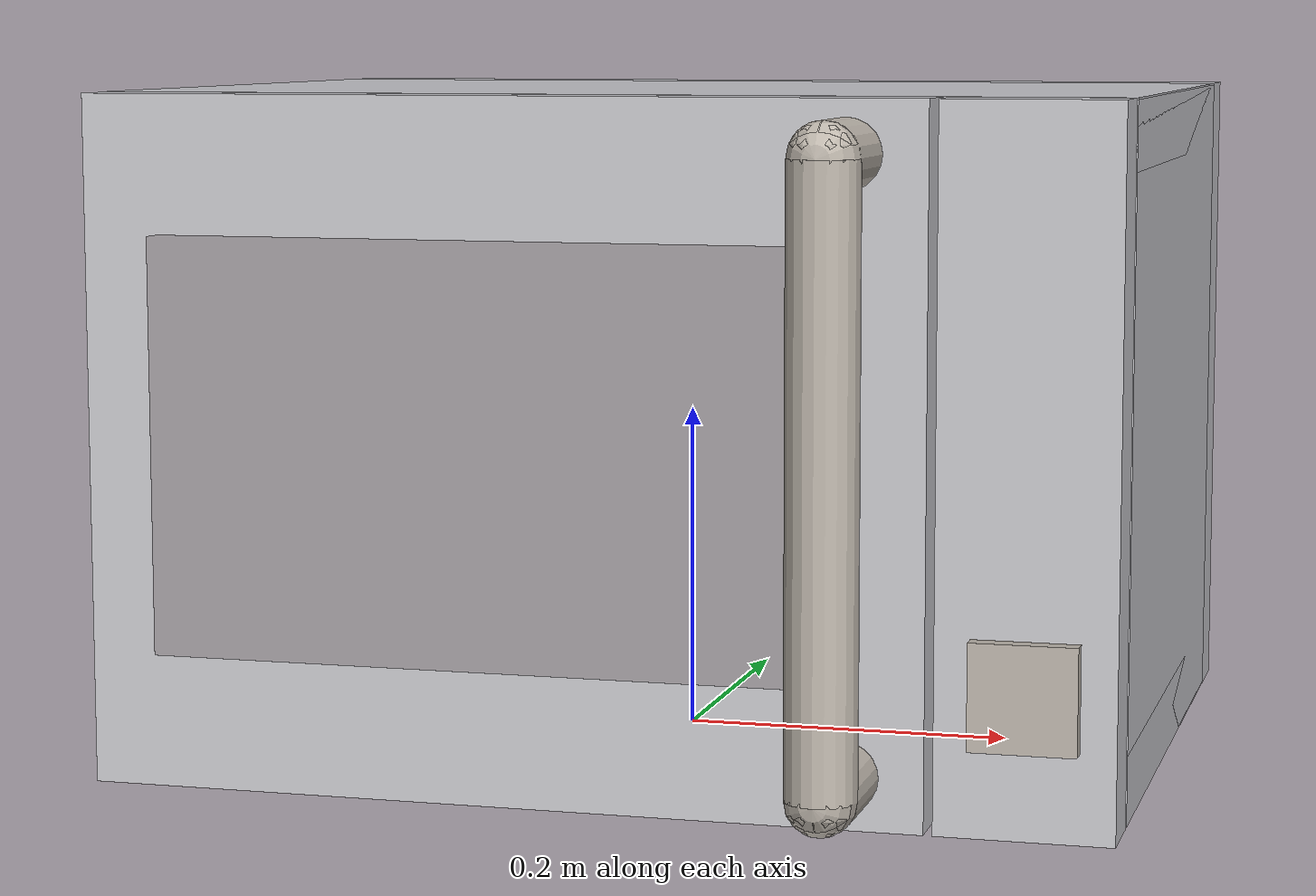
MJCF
<mujoco model="microwave">
    <compiler inertiafromgeom="auto" inertiagrouprange="1 4" angle="radian"/>

    <asset>
        <mesh file="microwave/meshes/micro.stl" name="micro"/>
        <mesh file="microwave/meshes/microdoor.stl" name="microdoor"/>
        <mesh file="microwave/meshes/microbutton.stl" name="microbutton"/>
        <mesh file="microwave/meshes/microfeet.stl" name="microfeet"/>
        <mesh file="microwave/meshes/microhandle.stl" name="microhandle"/>
        <mesh file="microwave/meshes/microwindow.stl" name="microwindow"/>

        <texture name="T_micro_metal" type="cube" height="1" width="1" file="common/textures/metal0.png"/>

        <material name="micro_metal" rgba="1 1 1 1" texture="T_micro_metal" texrepeat="3 3" reflectance="1" shininess="1" texuniform="false"/>
        <material name="micro_black" rgba=".2 .2 .2 1" reflectance="1" shininess="1"/>
        <material name="micro_white" rgba=".8 .8 .82 1" reflectance="1" shininess="1"/>
        <material name="micro_window" rgba=".4 .4 .4 .25" reflectance="1" shininess="1"/>
        <material name="micro_collision_blue" rgba="0.3 0.3 1.0 0.5" shininess="0" specular="0"/>
    </asset>

    <default>
        <default class="microwave">
            <joint damping="2" frictionloss="2" armature=".01" limited="true"/>
            <geom conaffinity="0" contype="0" group="1" material="micro_black" type="mesh"/>
            <default class="micro_collision">
                <geom conaffinity="1" condim="3" contype="0" group="4" margin="0.001" material="micro_collision_blue" solimp=".8 .9 .01" solref=".02 1"/>
            </default>
        </default>
    </default>

    <sensor>
        <jointpos name="micro0joint" joint="micro0joint"/>
    </sensor>

    <visual>
        <headlight diffuse=".9 .9 .9"/>
    </visual>

    <worldbody>
        <body name="microroot3" childclass="microwave">
            <geom type="box" size=".3 .02 .20" pos="0 .22 .20" material="micro_white"/> <!--back -->
            <geom type="box" size=".3 .2 .02" pos="0 0 .02" material="micro_white"/> <!--bottom -->
            <geom type="box" size=".3 .2 .02" pos="0 0 .38" material="micro_white"/> <!--top -->
            <geom type="box" size=".05 .2 .199" pos="0.25 0 .20" material="micro_white"/>  <!--right-->
            <geom type="box" size=".02 .2 .199" pos="-.28 0 .20" material="micro_white"/> <!--left -->

            <geom class="micro_collision" type="box" size=".3 .02 .16" pos="0 .22 .16"/> <!--back -->
            <geom class="micro_collision" type="box" size=".3 .2 .02" pos="0 0 .02"/> <!--bottom -->
            <geom class="micro_collision" type="box" size=".3 .2 .02" pos="0 0 .30"/> <!--top -->
            <geom class="micro_collision" type="box" size=".05 .2 .159" pos="0.25 0 .16"/>  <!--right-->
            <geom class="micro_collision" type="box" size=".02 .2 .159" pos="-.28 0 .16"/> <!--left -->

            <geom type="box" size=".05 .02 .20" pos="0.25 -.225 .20" material="micro_white"/>
            <geom type="box" size=".03 .005 .03" pos="0.25 -.25 .08" material="micro_metal"/>
            <geom class="micro_collision" type="box" size=".05 .02 .16" pos="0.25 -.225 .16"/>
            <geom class="micro_collision" type="cylinder" size=".03 .01" pos="0.25 -.25 .08" euler="1.57 0 0"/>

            <body name="microdoorroot3">
                <joint axis="0 0 1" pos="-.3 -.2 .20" limited="true" name="micro0joint" range="-2.094 0"/>
                <geom type="box" size=".245 .02 .20" pos="-.05 -.225 .20" material="micro_white"/>
                <geom type="box" size=".2 .02 .12" pos="-.05 -.24 .20" material="micro_black" rgba=".1 0 0 .2"/>
                <geom material="micro_metal" pos="0.15 -0.3 0.20" size="0.02 0.17" type="capsule"/>
                <geom material="micro_metal" euler="1.57 0 0" pos="0.15 -0.27 .37" size="0.02 0.03" type="capsule"/>
                <geom material="micro_metal" euler="1.57 0 0" pos="0.15 -0.27 .03" size="0.02 0.03" type="capsule"/>

                <geom class="micro_collision" pos="0.15 -0.3 0.20" size="0.02 0.13" type="capsule" mass="0.020"/>
                <geom class="micro_collision" euler="1.57 0 0" pos="0.15 -0.27 .29" size="0.02 0.03" type="capsule" mass="0.020"/>
                <geom class="micro_collision" euler="1.57 0 0" pos="0.15 -0.27 .03" size="0.02 0.03" type="capsule" mass="0.020"/>
                <geom class="micro_collision" type="box" size=".24 .02 .20" pos="-.05 -.225 .20" mass="0.20"/>
                <site type="sphere" name="microhandle_site3" pos="0.15 -0.3 0.20" size=".01" group="3" rgba="1 1 0 1"/>
            </body>
        </body>

    </worldbody>

</mujoco>
